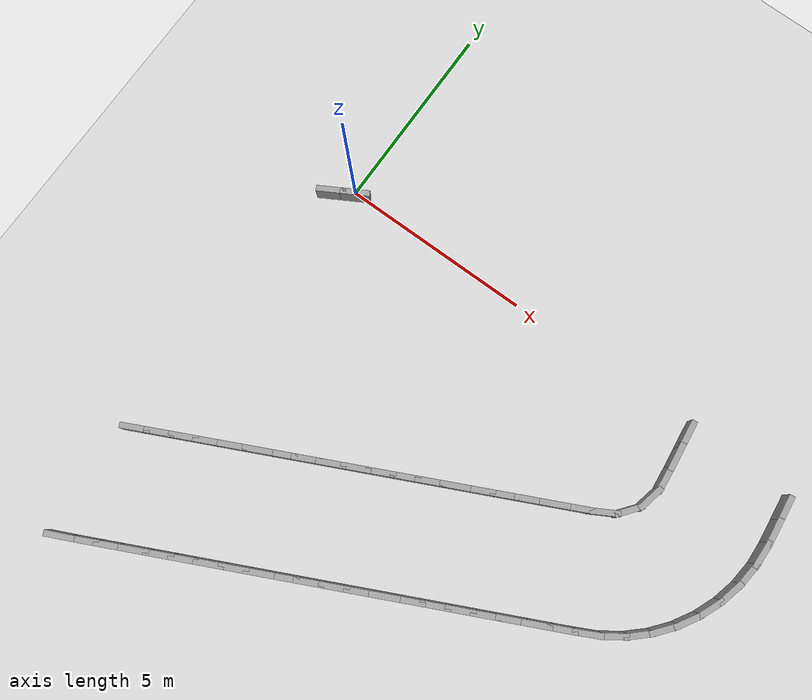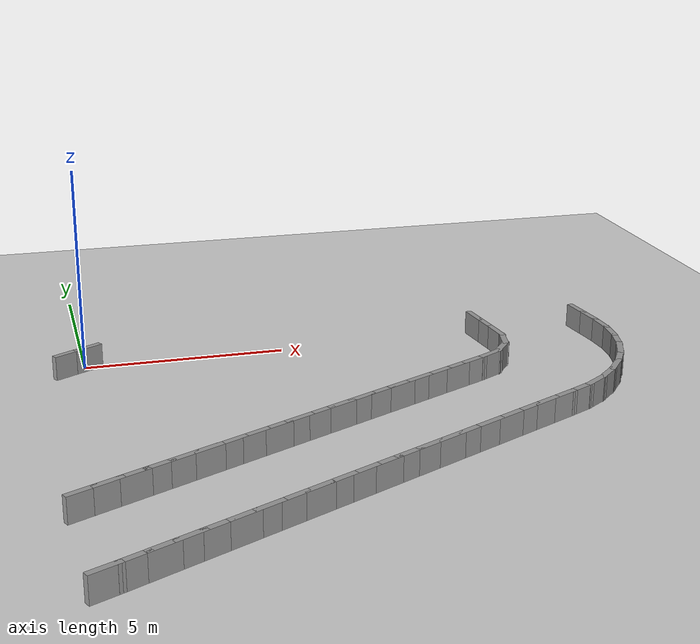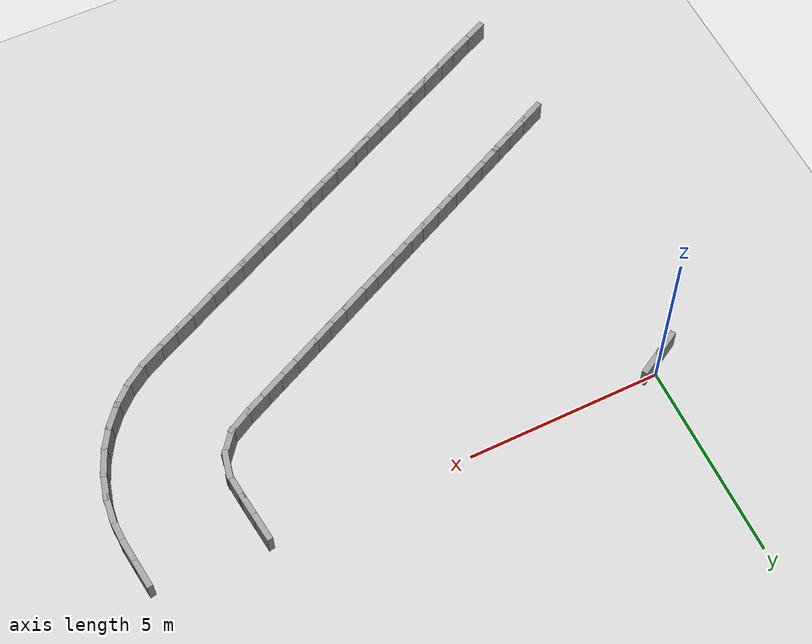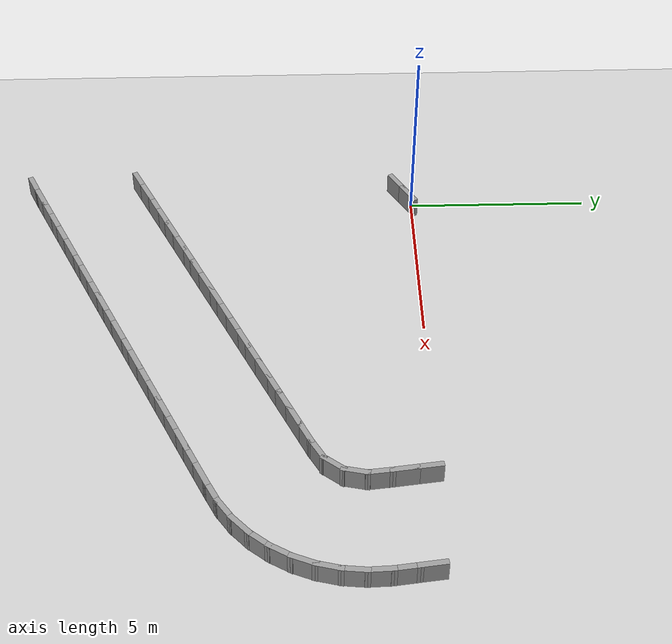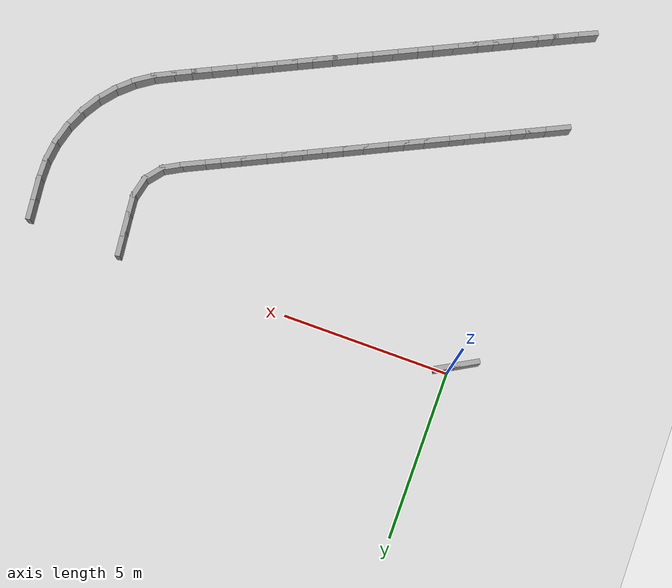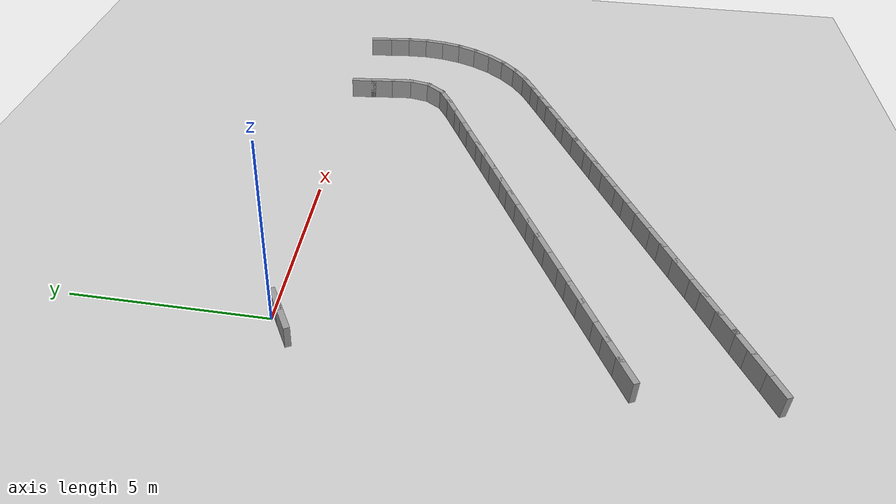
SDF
<sdf version="1.7">
 <world name="default">
  <model name="ground_plane">
   <static>1</static>
   <link name="link">
    <collision name="collision">
     <geometry><plane><normal>0 0 1</normal><size>100 100</size></plane></geometry>
     <surface><friction><ode><mu>100</mu><mu2>50</mu2></ode></friction></surface>
    </collision>
    <visual name="visual">
     <cast_shadows>0</cast_shadows>
     <geometry><plane><normal>0 0 1</normal><size>100 100</size></plane></geometry>
     <material>
      <script><uri>file://media/materials/scripts/gazebo.material</uri><name>Gazebo/Grey</name></script>
     </material>
    </visual>
   </link>
  </model>
  <model name="rand_turn_11">
   <link name="Wall_45">
    <collision name="Wall_45_Collision">
     <geometry><box><size>0.7500 0.1500 0.6000</size></box></geometry>
     <pose>0 0 0.3000 0 -0 0</pose>
    </collision>
    <visual name="Wall_45_Visual">
     <pose>0 0 0.3000 0 -0 0</pose>
     <geometry><box><size>0.7500 0.1500 0.6000</size></box></geometry>
     <material>
      <script><uri>file://media/materials/scripts/gazebo.material</uri><name>Gazebo/Grey</name></script>
      <ambient>1 1 1 1</ambient>
     </material>
    </visual>
    <pose>13.0022 -0.4263 0 0 -0 -1.44849</pose>
   </link>
   <link name="Wall_46">
    <collision name="Wall_46_Collision">
     <geometry><box><size>0.7500 0.1500 0.6000</size></box></geometry>
     <pose>0 0 0.3000 0 -0 0</pose>
    </collision>
    <visual name="Wall_46_Visual">
     <pose>0 0 0.3000 0 -0 0</pose>
     <geometry><box><size>0.7500 0.1500 0.6000</size></box></geometry>
     <material>
      <script><uri>file://media/materials/scripts/gazebo.material</uri><name>Gazebo/Grey</name></script>
      <ambient>1 1 1 1</ambient>
     </material>
    </visual>
    <pose>13.0751 -1.0219 0 0 -0 -1.44950</pose>
   </link>
   <link name="Wall_47">
    <collision name="Wall_47_Collision">
     <geometry><box><size>0.7494 0.1500 0.6000</size></box></geometry>
     <pose>0 0 0.3000 0 -0 0</pose>
    </collision>
    <visual name="Wall_47_Visual">
     <pose>0 0 0.3000 0 -0 0</pose>
     <geometry><box><size>0.7494 0.1500 0.6000</size></box></geometry>
     <material>
      <script><uri>file://media/materials/scripts/gazebo.material</uri><name>Gazebo/Grey</name></script>
      <ambient>1 1 1 1</ambient>
     </material>
    </visual>
    <pose>13.1234 -1.6192 0 0 -0 -1.53078</pose>
   </link>
   <link name="Wall_48">
    <collision name="Wall_48_Collision">
     <geometry><box><size>0.7494 0.1500 0.6000</size></box></geometry>
     <pose>0 0 0.3000 0 -0 0</pose>
    </collision>
    <visual name="Wall_48_Visual">
     <pose>0 0 0.3000 0 -0 0</pose>
     <geometry><box><size>0.7494 0.1500 0.6000</size></box></geometry>
     <material>
      <script><uri>file://media/materials/scripts/gazebo.material</uri><name>Gazebo/Grey</name></script>
      <ambient>1 1 1 1</ambient>
     </material>
    </visual>
    <pose>13.1042 -2.2167 0 0 -0 -1.67504</pose>
   </link>
   <link name="Wall_49">
    <collision name="Wall_49_Collision">
     <geometry><box><size>0.7494 0.1500 0.6000</size></box></geometry>
     <pose>0 0 0.3000 0 -0 0</pose>
    </collision>
    <visual name="Wall_49_Visual">
     <pose>0 0 0.3000 0 -0 0</pose>
     <geometry><box><size>0.7494 0.1500 0.6000</size></box></geometry>
     <material>
      <script><uri>file://media/materials/scripts/gazebo.material</uri><name>Gazebo/Grey</name></script>
      <ambient>1 1 1 1</ambient>
     </material>
    </visual>
    <pose>12.9992 -2.8053 0 0 -0 -1.81954</pose>
   </link>
   <link name="Wall_50">
    <collision name="Wall_50_Collision">
     <geometry><box><size>0.7495 0.1500 0.6000</size></box></geometry>
     <pose>0 0 0.3000 0 -0 0</pose>
    </collision>
    <visual name="Wall_50_Visual">
     <pose>0 0 0.3000 0 -0 0</pose>
     <geometry><box><size>0.7495 0.1500 0.6000</size></box></geometry>
     <material>
      <script><uri>file://media/materials/scripts/gazebo.material</uri><name>Gazebo/Grey</name></script>
      <ambient>1 1 1 1</ambient>
     </material>
    </visual>
    <pose>12.8106 -3.3727 0 0 -0 -1.96403</pose>
   </link>
   <link name="Wall_51">
    <collision name="Wall_51_Collision">
     <geometry><box><size>0.7495 0.1500 0.6000</size></box></geometry>
     <pose>0 0 0.3000 0 -0 0</pose>
    </collision>
    <visual name="Wall_51_Visual">
     <pose>0 0 0.3000 0 -0 0</pose>
     <geometry><box><size>0.7495 0.1500 0.6000</size></box></geometry>
     <material>
      <script><uri>file://media/materials/scripts/gazebo.material</uri><name>Gazebo/Grey</name></script>
      <ambient>1 1 1 1</ambient>
     </material>
    </visual>
    <pose>12.5422 -3.9070 0 0 -0 -2.10853</pose>
   </link>
   <link name="Wall_52">
    <collision name="Wall_52_Collision">
     <geometry><box><size>0.7495 0.1500 0.6000</size></box></geometry>
     <pose>0 0 0.3000 0 -0 0</pose>
    </collision>
    <visual name="Wall_52_Visual">
     <pose>0 0 0.3000 0 -0 0</pose>
     <geometry><box><size>0.7495 0.1500 0.6000</size></box></geometry>
     <material>
      <script><uri>file://media/materials/scripts/gazebo.material</uri><name>Gazebo/Grey</name></script>
      <ambient>1 1 1 1</ambient>
     </material>
    </visual>
    <pose>12.1997 -4.3970 0 0 -0 -2.25303</pose>
   </link>
   <link name="Wall_53">
    <collision name="Wall_53_Collision">
     <geometry><box><size>0.7495 0.1500 0.6000</size></box></geometry>
     <pose>0 0 0.3000 0 -0 0</pose>
    </collision>
    <visual name="Wall_53_Visual">
     <pose>0 0 0.3000 0 -0 0</pose>
     <geometry><box><size>0.7495 0.1500 0.6000</size></box></geometry>
     <material>
      <script><uri>file://media/materials/scripts/gazebo.material</uri><name>Gazebo/Grey</name></script>
      <ambient>1 1 1 1</ambient>
     </material>
    </visual>
    <pose>11.7902 -4.8327 0 0 -0 -2.39752</pose>
   </link>
   <link name="Wall_54">
    <collision name="Wall_54_Collision">
     <geometry><box><size>0.7495 0.1500 0.6000</size></box></geometry>
     <pose>0 0 0.3000 0 -0 0</pose>
    </collision>
    <visual name="Wall_54_Visual">
     <pose>0 0 0.3000 0 -0 0</pose>
     <geometry><box><size>0.7495 0.1500 0.6000</size></box></geometry>
     <material>
      <script><uri>file://media/materials/scripts/gazebo.material</uri><name>Gazebo/Grey</name></script>
      <ambient>1 1 1 1</ambient>
     </material>
    </visual>
    <pose>11.3222 -5.2048 0 0 -0 -2.54202</pose>
   </link>
   <link name="Wall_55">
    <collision name="Wall_55_Collision">
     <geometry><box><size>0.7498 0.1500 0.6000</size></box></geometry>
     <pose>0 0 0.3000 0 -0 0</pose>
    </collision>
    <visual name="Wall_55_Visual">
     <pose>0 0 0.3000 0 -0 0</pose>
     <geometry><box><size>0.7498 0.1500 0.6000</size></box></geometry>
     <material>
      <script><uri>file://media/materials/scripts/gazebo.material</uri><name>Gazebo/Grey</name></script>
      <ambient>1 1 1 1</ambient>
     </material>
    </visual>
    <pose>10.8072 -5.5096 0 0 -0 -2.67236</pose>
   </link>
   <link name="Wall_56">
    <collision name="Wall_56_Collision">
     <geometry><box><size>0.7500 0.1500 0.6000</size></box></geometry>
     <pose>0 0 0.3000 0 -0 0</pose>
    </collision>
    <visual name="Wall_56_Visual">
     <pose>0 0 0.3000 0 -0 0</pose>
     <geometry><box><size>0.7500 0.1500 0.6000</size></box></geometry>
     <material>
      <script><uri>file://media/materials/scripts/gazebo.material</uri><name>Gazebo/Grey</name></script>
      <ambient>1 1 1 1</ambient>
     </material>
    </visual>
    <pose>10.2692 -5.7749 0 0 -0 -2.69464</pose>
   </link>
   <link name="Wall_57">
    <collision name="Wall_57_Collision">
     <geometry><box><size>0.7500 0.1500 0.6000</size></box></geometry>
     <pose>0 0 0.3000 0 -0 0</pose>
    </collision>
    <visual name="Wall_57_Visual">
     <pose>0 0 0.3000 0 -0 0</pose>
     <geometry><box><size>0.7500 0.1500 0.6000</size></box></geometry>
     <material>
      <script><uri>file://media/materials/scripts/gazebo.material</uri><name>Gazebo/Grey</name></script>
      <ambient>1 1 1 1</ambient>
     </material>
    </visual>
    <pose>9.7282 -6.0342 0 0 -0 -2.69464</pose>
   </link>
   <link name="Wall_58">
    <collision name="Wall_58_Collision">
     <geometry><box><size>0.7500 0.1500 0.6000</size></box></geometry>
     <pose>0 0 0.3000 0 -0 0</pose>
    </collision>
    <visual name="Wall_58_Visual">
     <pose>0 0 0.3000 0 -0 0</pose>
     <geometry><box><size>0.7500 0.1500 0.6000</size></box></geometry>
     <material>
      <script><uri>file://media/materials/scripts/gazebo.material</uri><name>Gazebo/Grey</name></script>
      <ambient>1 1 1 1</ambient>
     </material>
    </visual>
    <pose>9.1871 -6.2935 0 0 -0 -2.69464</pose>
   </link>
   <link name="Wall_59">
    <collision name="Wall_59_Collision">
     <geometry><box><size>0.7500 0.1500 0.6000</size></box></geometry>
     <pose>0 0 0.3000 0 -0 0</pose>
    </collision>
    <visual name="Wall_59_Visual">
     <pose>0 0 0.3000 0 -0 0</pose>
     <geometry><box><size>0.7500 0.1500 0.6000</size></box></geometry>
     <material>
      <script><uri>file://media/materials/scripts/gazebo.material</uri><name>Gazebo/Grey</name></script>
      <ambient>1 1 1 1</ambient>
     </material>
    </visual>
    <pose>8.6460 -6.5529 0 0 -0 -2.69464</pose>
   </link>
   <link name="Wall_60">
    <collision name="Wall_60_Collision">
     <geometry><box><size>0.7500 0.1500 0.6000</size></box></geometry>
     <pose>0 0 0.3000 0 -0 0</pose>
    </collision>
    <visual name="Wall_60_Visual">
     <pose>0 0 0.3000 0 -0 0</pose>
     <geometry><box><size>0.7500 0.1500 0.6000</size></box></geometry>
     <material>
      <script><uri>file://media/materials/scripts/gazebo.material</uri><name>Gazebo/Grey</name></script>
      <ambient>1 1 1 1</ambient>
     </material>
    </visual>
    <pose>8.1050 -6.8122 0 0 -0 -2.69464</pose>
   </link>
   <link name="Wall_61">
    <collision name="Wall_61_Collision">
     <geometry><box><size>0.7500 0.1500 0.6000</size></box></geometry>
     <pose>0 0 0.3000 0 -0 0</pose>
    </collision>
    <visual name="Wall_61_Visual">
     <pose>0 0 0.3000 0 -0 0</pose>
     <geometry><box><size>0.7500 0.1500 0.6000</size></box></geometry>
     <material>
      <script><uri>file://media/materials/scripts/gazebo.material</uri><name>Gazebo/Grey</name></script>
      <ambient>1 1 1 1</ambient>
     </material>
    </visual>
    <pose>7.5639 -7.0715 0 0 -0 -2.69464</pose>
   </link>
   <link name="Wall_62">
    <collision name="Wall_62_Collision">
     <geometry><box><size>0.7500 0.1500 0.6000</size></box></geometry>
     <pose>0 0 0.3000 0 -0 0</pose>
    </collision>
    <visual name="Wall_62_Visual">
     <pose>0 0 0.3000 0 -0 0</pose>
     <geometry><box><size>0.7500 0.1500 0.6000</size></box></geometry>
     <material>
      <script><uri>file://media/materials/scripts/gazebo.material</uri><name>Gazebo/Grey</name></script>
      <ambient>1 1 1 1</ambient>
     </material>
    </visual>
    <pose>7.0229 -7.3309 0 0 -0 -2.69464</pose>
   </link>
   <link name="Wall_63">
    <collision name="Wall_63_Collision">
     <geometry><box><size>0.7500 0.1500 0.6000</size></box></geometry>
     <pose>0 0 0.3000 0 -0 0</pose>
    </collision>
    <visual name="Wall_63_Visual">
     <pose>0 0 0.3000 0 -0 0</pose>
     <geometry><box><size>0.7500 0.1500 0.6000</size></box></geometry>
     <material>
      <script><uri>file://media/materials/scripts/gazebo.material</uri><name>Gazebo/Grey</name></script>
      <ambient>1 1 1 1</ambient>
     </material>
    </visual>
    <pose>6.4818 -7.5902 0 0 -0 -2.69464</pose>
   </link>
   <link name="Wall_64">
    <collision name="Wall_64_Collision">
     <geometry><box><size>0.7500 0.1500 0.6000</size></box></geometry>
     <pose>0 0 0.3000 0 -0 0</pose>
    </collision>
    <visual name="Wall_64_Visual">
     <pose>0 0 0.3000 0 -0 0</pose>
     <geometry><box><size>0.7500 0.1500 0.6000</size></box></geometry>
     <material>
      <script><uri>file://media/materials/scripts/gazebo.material</uri><name>Gazebo/Grey</name></script>
      <ambient>1 1 1 1</ambient>
     </material>
    </visual>
    <pose>5.9407 -7.8495 0 0 -0 -2.69464</pose>
   </link>
   <link name="Wall_65">
    <collision name="Wall_65_Collision">
     <geometry><box><size>0.7500 0.1500 0.6000</size></box></geometry>
     <pose>0 0 0.3000 0 -0 0</pose>
    </collision>
    <visual name="Wall_65_Visual">
     <pose>0 0 0.3000 0 -0 0</pose>
     <geometry><box><size>0.7500 0.1500 0.6000</size></box></geometry>
     <material>
      <script><uri>file://media/materials/scripts/gazebo.material</uri><name>Gazebo/Grey</name></script>
      <ambient>1 1 1 1</ambient>
     </material>
    </visual>
    <pose>5.3997 -8.1089 0 0 -0 -2.69464</pose>
   </link>
   <link name="Wall_66">
    <collision name="Wall_66_Collision">
     <geometry><box><size>0.7500 0.1500 0.6000</size></box></geometry>
     <pose>0 0 0.3000 0 -0 0</pose>
    </collision>
    <visual name="Wall_66_Visual">
     <pose>0 0 0.3000 0 -0 0</pose>
     <geometry><box><size>0.7500 0.1500 0.6000</size></box></geometry>
     <material>
      <script><uri>file://media/materials/scripts/gazebo.material</uri><name>Gazebo/Grey</name></script>
      <ambient>1 1 1 1</ambient>
     </material>
    </visual>
    <pose>4.8586 -8.3682 0 0 -0 -2.69464</pose>
   </link>
   <link name="Wall_67">
    <collision name="Wall_67_Collision">
     <geometry><box><size>0.7500 0.1500 0.6000</size></box></geometry>
     <pose>0 0 0.3000 0 -0 0</pose>
    </collision>
    <visual name="Wall_67_Visual">
     <pose>0 0 0.3000 0 -0 0</pose>
     <geometry><box><size>0.7500 0.1500 0.6000</size></box></geometry>
     <material>
      <script><uri>file://media/materials/scripts/gazebo.material</uri><name>Gazebo/Grey</name></script>
      <ambient>1 1 1 1</ambient>
     </material>
    </visual>
    <pose>4.3176 -8.6275 0 0 -0 -2.69464</pose>
   </link>
   <link name="Wall_68">
    <collision name="Wall_68_Collision">
     <geometry><box><size>0.7500 0.1500 0.6000</size></box></geometry>
     <pose>0 0 0.3000 0 -0 0</pose>
    </collision>
    <visual name="Wall_68_Visual">
     <pose>0 0 0.3000 0 -0 0</pose>
     <geometry><box><size>0.7500 0.1500 0.6000</size></box></geometry>
     <material>
      <script><uri>file://media/materials/scripts/gazebo.material</uri><name>Gazebo/Grey</name></script>
      <ambient>1 1 1 1</ambient>
     </material>
    </visual>
    <pose>3.7765 -8.8869 0 0 -0 -2.69464</pose>
   </link>
   <link name="Wall_69">
    <collision name="Wall_69_Collision">
     <geometry><box><size>0.7500 0.1500 0.6000</size></box></geometry>
     <pose>0 0 0.3000 0 -0 0</pose>
    </collision>
    <visual name="Wall_69_Visual">
     <pose>0 0 0.3000 0 -0 0</pose>
     <geometry><box><size>0.7500 0.1500 0.6000</size></box></geometry>
     <material>
      <script><uri>file://media/materials/scripts/gazebo.material</uri><name>Gazebo/Grey</name></script>
      <ambient>1 1 1 1</ambient>
     </material>
    </visual>
    <pose>3.2354 -9.1462 0 0 -0 -2.69464</pose>
   </link>
   <link name="Wall_70">
    <collision name="Wall_70_Collision">
     <geometry><box><size>0.7500 0.1500 0.6000</size></box></geometry>
     <pose>0 0 0.3000 0 -0 0</pose>
    </collision>
    <visual name="Wall_70_Visual">
     <pose>0 0 0.3000 0 -0 0</pose>
     <geometry><box><size>0.7500 0.1500 0.6000</size></box></geometry>
     <material>
      <script><uri>file://media/materials/scripts/gazebo.material</uri><name>Gazebo/Grey</name></script>
      <ambient>1 1 1 1</ambient>
     </material>
    </visual>
    <pose>2.6944 -9.4055 0 0 -0 -2.69464</pose>
   </link>
   <link name="Wall_71">
    <collision name="Wall_71_Collision">
     <geometry><box><size>0.7500 0.1500 0.6000</size></box></geometry>
     <pose>0 0 0.3000 0 -0 0</pose>
    </collision>
    <visual name="Wall_71_Visual">
     <pose>0 0 0.3000 0 -0 0</pose>
     <geometry><box><size>0.7500 0.1500 0.6000</size></box></geometry>
     <material>
      <script><uri>file://media/materials/scripts/gazebo.material</uri><name>Gazebo/Grey</name></script>
      <ambient>1 1 1 1</ambient>
     </material>
    </visual>
    <pose>2.1533 -9.6649 0 0 -0 -2.69464</pose>
   </link>
   <link name="Wall_72">
    <collision name="Wall_72_Collision">
     <geometry><box><size>0.7500 0.1500 0.6000</size></box></geometry>
     <pose>0 0 0.3000 0 -0 0</pose>
    </collision>
    <visual name="Wall_72_Visual">
     <pose>0 0 0.3000 0 -0 0</pose>
     <geometry><box><size>0.7500 0.1500 0.6000</size></box></geometry>
     <material>
      <script><uri>file://media/materials/scripts/gazebo.material</uri><name>Gazebo/Grey</name></script>
      <ambient>1 1 1 1</ambient>
     </material>
    </visual>
    <pose>1.6123 -9.9242 0 0 -0 -2.69464</pose>
   </link>
   <link name="Wall_73">
    <collision name="Wall_73_Collision">
     <geometry><box><size>0.7500 0.1500 0.6000</size></box></geometry>
     <pose>0 0 0.3000 0 -0 0</pose>
    </collision>
    <visual name="Wall_73_Visual">
     <pose>0 0 0.3000 0 -0 0</pose>
     <geometry><box><size>0.7500 0.1500 0.6000</size></box></geometry>
     <material>
      <script><uri>file://media/materials/scripts/gazebo.material</uri><name>Gazebo/Grey</name></script>
      <ambient>1 1 1 1</ambient>
     </material>
    </visual>
    <pose>1.0712 -10.1835 0 0 -0 -2.69464</pose>
   </link>
   <link name="Wall_74">
    <collision name="Wall_74_Collision">
     <geometry><box><size>0.7500 0.1500 0.6000</size></box></geometry>
     <pose>0 0 0.3000 0 -0 0</pose>
    </collision>
    <visual name="Wall_74_Visual">
     <pose>0 0 0.3000 0 -0 0</pose>
     <geometry><box><size>0.7500 0.1500 0.6000</size></box></geometry>
     <material>
      <script><uri>file://media/materials/scripts/gazebo.material</uri><name>Gazebo/Grey</name></script>
      <ambient>1 1 1 1</ambient>
     </material>
    </visual>
    <pose>0.5301 -10.4429 0 0 -0 -2.69464</pose>
   </link>
   <link name="Wall_75">
    <collision name="Wall_75_Collision">
     <geometry><box><size>0.7500 0.1500 0.6000</size></box></geometry>
     <pose>0 0 0.3000 0 -0 0</pose>
    </collision>
    <visual name="Wall_75_Visual">
     <pose>0 0 0.3000 0 -0 0</pose>
     <geometry><box><size>0.7500 0.1500 0.6000</size></box></geometry>
     <material>
      <script><uri>file://media/materials/scripts/gazebo.material</uri><name>Gazebo/Grey</name></script>
      <ambient>1 1 1 1</ambient>
     </material>
    </visual>
    <pose>-0.0109 -10.7022 0 0 -0 -2.69464</pose>
   </link>
   <link name="Wall_76">
    <collision name="Wall_76_Collision">
     <geometry><box><size>0.7499 0.1500 0.6000</size></box></geometry>
     <pose>0 0 0.3000 0 -0 0</pose>
    </collision>
    <visual name="Wall_76_Visual">
     <pose>0 0 0.3000 0 -0 0</pose>
     <geometry><box><size>0.7499 0.1500 0.6000</size></box></geometry>
     <material>
      <script><uri>file://media/materials/scripts/gazebo.material</uri><name>Gazebo/Grey</name></script>
      <ambient>1 1 1 1</ambient>
     </material>
    </visual>
    <pose>-0.5539 -10.9574 0 0 -0 -2.70963</pose>
   </link>
   <link name="Wall_107">
    <collision name="Wall_107_Collision">
     <geometry><box><size>0.7500 0.1500 0.6000</size></box></geometry>
     <pose>0 0 0.3000 0 -0 0</pose>
    </collision>
    <visual name="Wall_107_Visual">
     <pose>0 0 0.3000 0 -0 0</pose>
     <geometry><box><size>0.7500 0.1500 0.6000</size></box></geometry>
     <material>
      <script><uri>file://media/materials/scripts/gazebo.material</uri><name>Gazebo/Grey</name></script>
      <ambient>1 1 1 1</ambient>
     </material>
    </visual>
    <pose>-0.4271 -0.4054 0 0 -0 0.51695</pose>
   </link>
   <link name="Wall_108">
    <collision name="Wall_108_Collision">
     <geometry><box><size>0.7500 0.1500 0.6000</size></box></geometry>
     <pose>0 0 0.3000 0 -0 0</pose>
    </collision>
    <visual name="Wall_108_Visual">
     <pose>0 0 0.3000 0 -0 0</pose>
     <geometry><box><size>0.7500 0.1500 0.6000</size></box></geometry>
     <material>
      <script><uri>file://media/materials/scripts/gazebo.material</uri><name>Gazebo/Grey</name></script>
      <ambient>1 1 1 1</ambient>
     </material>
    </visual>
    <pose>0.0945 -0.1089 0 0 -0 0.51695</pose>
   </link>
   <link name="Wall_134">
    <collision name="Wall_134_Collision">
     <geometry><box><size>0.7500 0.1500 0.6000</size></box></geometry>
     <pose>0 0 0.3000 0 -0 0</pose>
    </collision>
    <visual name="Wall_134_Visual">
     <pose>0 0 0.3000 0 -0 0</pose>
     <geometry><box><size>0.7500 0.1500 0.6000</size></box></geometry>
     <material>
      <script><uri>file://media/materials/scripts/gazebo.material</uri><name>Gazebo/Grey</name></script>
      <ambient>1 1 1 1</ambient>
     </material>
    </visual>
    <pose>10.1563 -0.2913 0 0 -0 -1.44849</pose>
   </link>
   <link name="Wall_135">
    <collision name="Wall_135_Collision">
     <geometry><box><size>0.7500 0.1500 0.6000</size></box></geometry>
     <pose>0 0 0.3000 0 -0 0</pose>
    </collision>
    <visual name="Wall_135_Visual">
     <pose>0 0 0.3000 0 -0 0</pose>
     <geometry><box><size>0.7500 0.1500 0.6000</size></box></geometry>
     <material>
      <script><uri>file://media/materials/scripts/gazebo.material</uri><name>Gazebo/Grey</name></script>
      <ambient>1 1 1 1</ambient>
     </material>
    </visual>
    <pose>10.2295 -0.8868 0 0 -0 -1.44849</pose>
   </link>
   <link name="Wall_136">
    <collision name="Wall_136_Collision">
     <geometry><box><size>0.7497 0.1500 0.6000</size></box></geometry>
     <pose>0 0 0.3000 0 -0 0</pose>
    </collision>
    <visual name="Wall_136_Visual">
     <pose>0 0 0.3000 0 -0 0</pose>
     <geometry><box><size>0.7497 0.1500 0.6000</size></box></geometry>
     <material>
      <script><uri>file://media/materials/scripts/gazebo.material</uri><name>Gazebo/Grey</name></script>
      <ambient>1 1 1 1</ambient>
     </material>
    </visual>
    <pose>10.2979 -1.4828 0 0 -0 -1.46460</pose>
   </link>
   <link name="Wall_137">
    <collision name="Wall_137_Collision">
     <geometry><box><size>0.7450 0.1500 0.6000</size></box></geometry>
     <pose>0 0 0.3000 0 -0 0</pose>
    </collision>
    <visual name="Wall_137_Visual">
     <pose>0 0 0.3000 0 -0 0</pose>
     <geometry><box><size>0.7450 0.1500 0.6000</size></box></geometry>
     <material>
      <script><uri>file://media/materials/scripts/gazebo.material</uri><name>Gazebo/Grey</name></script>
      <ambient>1 1 1 1</ambient>
     </material>
    </visual>
    <pose>10.2648 -2.0712 0 0 -0 -1.79063</pose>
   </link>
   <link name="Wall_138">
    <collision name="Wall_138_Collision">
     <geometry><box><size>0.7450 0.1500 0.6000</size></box></geometry>
     <pose>0 0 0.3000 0 -0 0</pose>
    </collision>
    <visual name="Wall_138_Visual">
     <pose>0 0 0.3000 0 -0 0</pose>
     <geometry><box><size>0.7450 0.1500 0.6000</size></box></geometry>
     <material>
      <script><uri>file://media/materials/scripts/gazebo.material</uri><name>Gazebo/Grey</name></script>
      <ambient>1 1 1 1</ambient>
     </material>
    </visual>
    <pose>10.0161 -2.5955 0 0 -0 -2.23681</pose>
   </link>
   <link name="Wall_139">
    <collision name="Wall_139_Collision">
     <geometry><box><size>0.7482 0.1500 0.6000</size></box></geometry>
     <pose>0 0 0.3000 0 -0 0</pose>
    </collision>
    <visual name="Wall_139_Visual">
     <pose>0 0 0.3000 0 -0 0</pose>
     <geometry><box><size>0.7482 0.1500 0.6000</size></box></geometry>
     <material>
      <script><uri>file://media/materials/scripts/gazebo.material</uri><name>Gazebo/Grey</name></script>
      <ambient>1 1 1 1</ambient>
     </material>
    </visual>
    <pose>9.5710 -2.9750 0 0 -0 -2.63306</pose>
   </link>
   <link name="Wall_140">
    <collision name="Wall_140_Collision">
     <geometry><box><size>0.7500 0.1500 0.6000</size></box></geometry>
     <pose>0 0 0.3000 0 -0 0</pose>
    </collision>
    <visual name="Wall_140_Visual">
     <pose>0 0 0.3000 0 -0 0</pose>
     <geometry><box><size>0.7500 0.1500 0.6000</size></box></geometry>
     <material>
      <script><uri>file://media/materials/scripts/gazebo.material</uri><name>Gazebo/Grey</name></script>
      <ambient>1 1 1 1</ambient>
     </material>
    </visual>
    <pose>9.0392 -3.2503 0 0 -0 -2.69464</pose>
   </link>
   <link name="Wall_141">
    <collision name="Wall_141_Collision">
     <geometry><box><size>0.7500 0.1500 0.6000</size></box></geometry>
     <pose>0 0 0.3000 0 -0 0</pose>
    </collision>
    <visual name="Wall_141_Visual">
     <pose>0 0 0.3000 0 -0 0</pose>
     <geometry><box><size>0.7500 0.1500 0.6000</size></box></geometry>
     <material>
      <script><uri>file://media/materials/scripts/gazebo.material</uri><name>Gazebo/Grey</name></script>
      <ambient>1 1 1 1</ambient>
     </material>
    </visual>
    <pose>8.4982 -3.5097 0 0 -0 -2.69464</pose>
   </link>
   <link name="Wall_142">
    <collision name="Wall_142_Collision">
     <geometry><box><size>0.7500 0.1500 0.6000</size></box></geometry>
     <pose>0 0 0.3000 0 -0 0</pose>
    </collision>
    <visual name="Wall_142_Visual">
     <pose>0 0 0.3000 0 -0 0</pose>
     <geometry><box><size>0.7500 0.1500 0.6000</size></box></geometry>
     <material>
      <script><uri>file://media/materials/scripts/gazebo.material</uri><name>Gazebo/Grey</name></script>
      <ambient>1 1 1 1</ambient>
     </material>
    </visual>
    <pose>7.9571 -3.7690 0 0 -0 -2.69464</pose>
   </link>
   <link name="Wall_143">
    <collision name="Wall_143_Collision">
     <geometry><box><size>0.7500 0.1500 0.6000</size></box></geometry>
     <pose>0 0 0.3000 0 -0 0</pose>
    </collision>
    <visual name="Wall_143_Visual">
     <pose>0 0 0.3000 0 -0 0</pose>
     <geometry><box><size>0.7500 0.1500 0.6000</size></box></geometry>
     <material>
      <script><uri>file://media/materials/scripts/gazebo.material</uri><name>Gazebo/Grey</name></script>
      <ambient>1 1 1 1</ambient>
     </material>
    </visual>
    <pose>7.4160 -4.0283 0 0 -0 -2.69464</pose>
   </link>
   <link name="Wall_144">
    <collision name="Wall_144_Collision">
     <geometry><box><size>0.7500 0.1500 0.6000</size></box></geometry>
     <pose>0 0 0.3000 0 -0 0</pose>
    </collision>
    <visual name="Wall_144_Visual">
     <pose>0 0 0.3000 0 -0 0</pose>
     <geometry><box><size>0.7500 0.1500 0.6000</size></box></geometry>
     <material>
      <script><uri>file://media/materials/scripts/gazebo.material</uri><name>Gazebo/Grey</name></script>
      <ambient>1 1 1 1</ambient>
     </material>
    </visual>
    <pose>6.8750 -4.2877 0 0 -0 -2.69464</pose>
   </link>
   <link name="Wall_145">
    <collision name="Wall_145_Collision">
     <geometry><box><size>0.7500 0.1500 0.6000</size></box></geometry>
     <pose>0 0 0.3000 0 -0 0</pose>
    </collision>
    <visual name="Wall_145_Visual">
     <pose>0 0 0.3000 0 -0 0</pose>
     <geometry><box><size>0.7500 0.1500 0.6000</size></box></geometry>
     <material>
      <script><uri>file://media/materials/scripts/gazebo.material</uri><name>Gazebo/Grey</name></script>
      <ambient>1 1 1 1</ambient>
     </material>
    </visual>
    <pose>6.3339 -4.5470 0 0 -0 -2.69464</pose>
   </link>
   <link name="Wall_146">
    <collision name="Wall_146_Collision">
     <geometry><box><size>0.7500 0.1500 0.6000</size></box></geometry>
     <pose>0 0 0.3000 0 -0 0</pose>
    </collision>
    <visual name="Wall_146_Visual">
     <pose>0 0 0.3000 0 -0 0</pose>
     <geometry><box><size>0.7500 0.1500 0.6000</size></box></geometry>
     <material>
      <script><uri>file://media/materials/scripts/gazebo.material</uri><name>Gazebo/Grey</name></script>
      <ambient>1 1 1 1</ambient>
     </material>
    </visual>
    <pose>5.7929 -4.8063 0 0 -0 -2.69464</pose>
   </link>
   <link name="Wall_147">
    <collision name="Wall_147_Collision">
     <geometry><box><size>0.7500 0.1500 0.6000</size></box></geometry>
     <pose>0 0 0.3000 0 -0 0</pose>
    </collision>
    <visual name="Wall_147_Visual">
     <pose>0 0 0.3000 0 -0 0</pose>
     <geometry><box><size>0.7500 0.1500 0.6000</size></box></geometry>
     <material>
      <script><uri>file://media/materials/scripts/gazebo.material</uri><name>Gazebo/Grey</name></script>
      <ambient>1 1 1 1</ambient>
     </material>
    </visual>
    <pose>5.2518 -5.0657 0 0 -0 -2.69464</pose>
   </link>
   <link name="Wall_148">
    <collision name="Wall_148_Collision">
     <geometry><box><size>0.7500 0.1500 0.6000</size></box></geometry>
     <pose>0 0 0.3000 0 -0 0</pose>
    </collision>
    <visual name="Wall_148_Visual">
     <pose>0 0 0.3000 0 -0 0</pose>
     <geometry><box><size>0.7500 0.1500 0.6000</size></box></geometry>
     <material>
      <script><uri>file://media/materials/scripts/gazebo.material</uri><name>Gazebo/Grey</name></script>
      <ambient>1 1 1 1</ambient>
     </material>
    </visual>
    <pose>4.7107 -5.3250 0 0 -0 -2.69464</pose>
   </link>
   <link name="Wall_149">
    <collision name="Wall_149_Collision">
     <geometry><box><size>0.7500 0.1500 0.6000</size></box></geometry>
     <pose>0 0 0.3000 0 -0 0</pose>
    </collision>
    <visual name="Wall_149_Visual">
     <pose>0 0 0.3000 0 -0 0</pose>
     <geometry><box><size>0.7500 0.1500 0.6000</size></box></geometry>
     <material>
      <script><uri>file://media/materials/scripts/gazebo.material</uri><name>Gazebo/Grey</name></script>
      <ambient>1 1 1 1</ambient>
     </material>
    </visual>
    <pose>4.1697 -5.5843 0 0 -0 -2.69464</pose>
   </link>
   <link name="Wall_150">
    <collision name="Wall_150_Collision">
     <geometry><box><size>0.7500 0.1500 0.6000</size></box></geometry>
     <pose>0 0 0.3000 0 -0 0</pose>
    </collision>
    <visual name="Wall_150_Visual">
     <pose>0 0 0.3000 0 -0 0</pose>
     <geometry><box><size>0.7500 0.1500 0.6000</size></box></geometry>
     <material>
      <script><uri>file://media/materials/scripts/gazebo.material</uri><name>Gazebo/Grey</name></script>
      <ambient>1 1 1 1</ambient>
     </material>
    </visual>
    <pose>3.6286 -5.8437 0 0 -0 -2.69464</pose>
   </link>
   <link name="Wall_151">
    <collision name="Wall_151_Collision">
     <geometry><box><size>0.7500 0.1500 0.6000</size></box></geometry>
     <pose>0 0 0.3000 0 -0 0</pose>
    </collision>
    <visual name="Wall_151_Visual">
     <pose>0 0 0.3000 0 -0 0</pose>
     <geometry><box><size>0.7500 0.1500 0.6000</size></box></geometry>
     <material>
      <script><uri>file://media/materials/scripts/gazebo.material</uri><name>Gazebo/Grey</name></script>
      <ambient>1 1 1 1</ambient>
     </material>
    </visual>
    <pose>3.0876 -6.1030 0 0 -0 -2.69464</pose>
   </link>
   <link name="Wall_152">
    <collision name="Wall_152_Collision">
     <geometry><box><size>0.7500 0.1500 0.6000</size></box></geometry>
     <pose>0 0 0.3000 0 -0 0</pose>
    </collision>
    <visual name="Wall_152_Visual">
     <pose>0 0 0.3000 0 -0 0</pose>
     <geometry><box><size>0.7500 0.1500 0.6000</size></box></geometry>
     <material>
      <script><uri>file://media/materials/scripts/gazebo.material</uri><name>Gazebo/Grey</name></script>
      <ambient>1 1 1 1</ambient>
     </material>
    </visual>
    <pose>2.5465 -6.3623 0 0 -0 -2.69464</pose>
   </link>
   <link name="Wall_153">
    <collision name="Wall_153_Collision">
     <geometry><box><size>0.7500 0.1500 0.6000</size></box></geometry>
     <pose>0 0 0.3000 0 -0 0</pose>
    </collision>
    <visual name="Wall_153_Visual">
     <pose>0 0 0.3000 0 -0 0</pose>
     <geometry><box><size>0.7500 0.1500 0.6000</size></box></geometry>
     <material>
      <script><uri>file://media/materials/scripts/gazebo.material</uri><name>Gazebo/Grey</name></script>
      <ambient>1 1 1 1</ambient>
     </material>
    </visual>
    <pose>2.0054 -6.6217 0 0 -0 -2.69464</pose>
   </link>
   <link name="Wall_154">
    <collision name="Wall_154_Collision">
     <geometry><box><size>0.7500 0.1500 0.6000</size></box></geometry>
     <pose>0 0 0.3000 0 -0 0</pose>
    </collision>
    <visual name="Wall_154_Visual">
     <pose>0 0 0.3000 0 -0 0</pose>
     <geometry><box><size>0.7500 0.1500 0.6000</size></box></geometry>
     <material>
      <script><uri>file://media/materials/scripts/gazebo.material</uri><name>Gazebo/Grey</name></script>
      <ambient>1 1 1 1</ambient>
     </material>
    </visual>
    <pose>1.4644 -6.8810 0 0 -0 -2.69464</pose>
   </link>
   <link name="Wall_155">
    <collision name="Wall_155_Collision">
     <geometry><box><size>0.7500 0.1500 0.6000</size></box></geometry>
     <pose>0 0 0.3000 0 -0 0</pose>
    </collision>
    <visual name="Wall_155_Visual">
     <pose>0 0 0.3000 0 -0 0</pose>
     <geometry><box><size>0.7500 0.1500 0.6000</size></box></geometry>
     <material>
      <script><uri>file://media/materials/scripts/gazebo.material</uri><name>Gazebo/Grey</name></script>
      <ambient>1 1 1 1</ambient>
     </material>
    </visual>
    <pose>0.9233 -7.1403 0 0 -0 -2.69464</pose>
   </link>
   <link name="Wall_156">
    <collision name="Wall_156_Collision">
     <geometry><box><size>0.7500 0.1500 0.6000</size></box></geometry>
     <pose>0 0 0.3000 0 -0 0</pose>
    </collision>
    <visual name="Wall_156_Visual">
     <pose>0 0 0.3000 0 -0 0</pose>
     <geometry><box><size>0.7500 0.1500 0.6000</size></box></geometry>
     <material>
      <script><uri>file://media/materials/scripts/gazebo.material</uri><name>Gazebo/Grey</name></script>
      <ambient>1 1 1 1</ambient>
     </material>
    </visual>
    <pose>0.3822 -7.3997 0 0 -0 -2.69464</pose>
   </link>
   <link name="Wall_157">
    <collision name="Wall_157_Collision">
     <geometry><box><size>0.7500 0.1500 0.6000</size></box></geometry>
     <pose>0 0 0.3000 0 -0 0</pose>
    </collision>
    <visual name="Wall_157_Visual">
     <pose>0 0 0.3000 0 -0 0</pose>
     <geometry><box><size>0.7500 0.1500 0.6000</size></box></geometry>
     <material>
      <script><uri>file://media/materials/scripts/gazebo.material</uri><name>Gazebo/Grey</name></script>
      <ambient>1 1 1 1</ambient>
     </material>
    </visual>
    <pose>-0.1588 -7.6590 0 0 -0 -2.69464</pose>
   </link>
   <link name="Wall_158">
    <collision name="Wall_158_Collision">
     <geometry><box><size>0.7500 0.1500 0.6000</size></box></geometry>
     <pose>0 0 0.3000 0 -0 0</pose>
    </collision>
    <visual name="Wall_158_Visual">
     <pose>0 0 0.3000 0 -0 0</pose>
     <geometry><box><size>0.7500 0.1500 0.6000</size></box></geometry>
     <material>
      <script><uri>file://media/materials/scripts/gazebo.material</uri><name>Gazebo/Grey</name></script>
      <ambient>1 1 1 1</ambient>
     </material>
    </visual>
    <pose>-0.6999 -7.9183 0 0 -0 -2.69464</pose>
   </link>
   <static>1</static>
  </model>
 </world>
</sdf>
